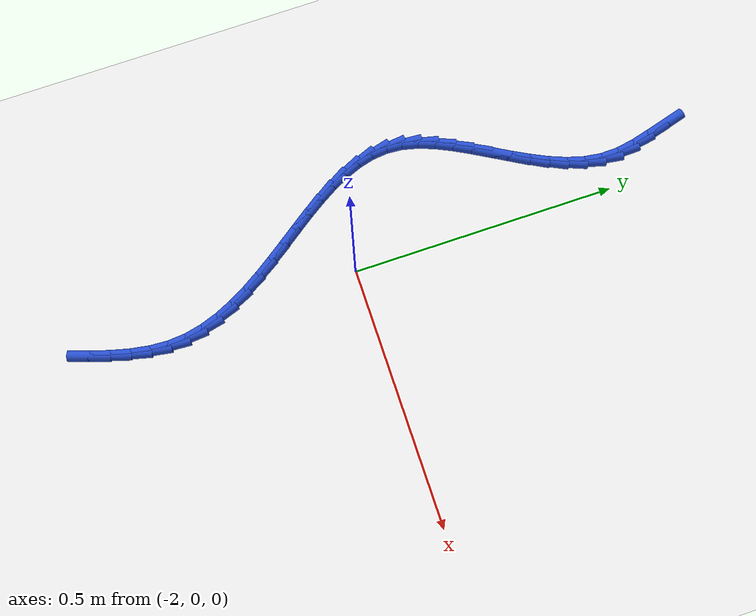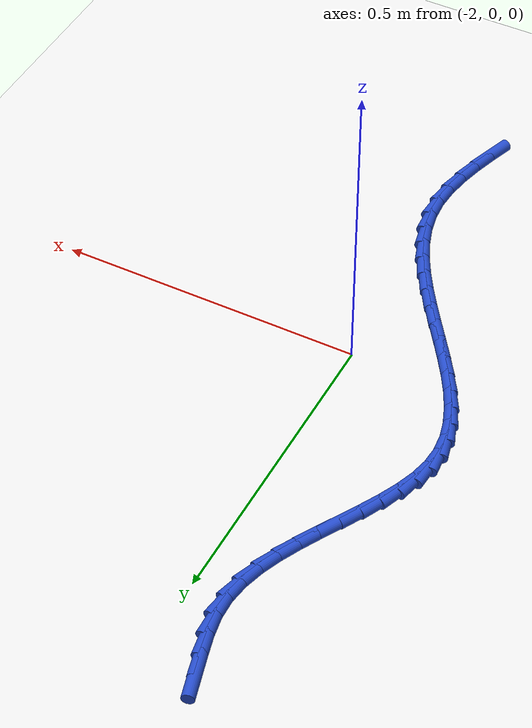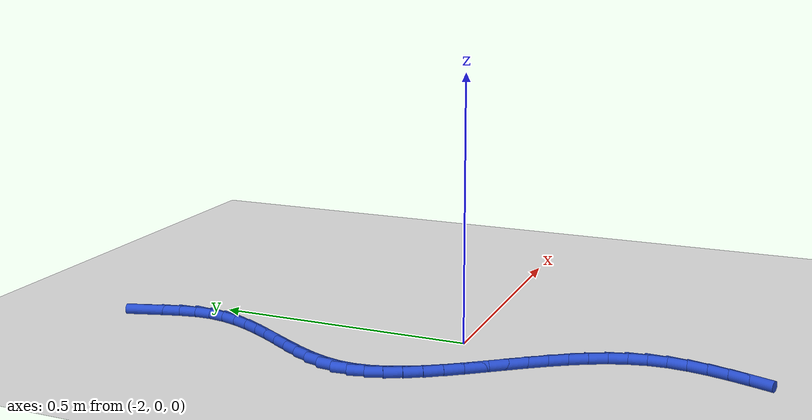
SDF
<sdf version="1.6">
 <world name="default">
  <model name="ground_plane">
   <static>1</static>
   <link name="link">
    <collision name="collision">
     <geometry><plane><normal>0 0 1</normal><size>100 100</size></plane></geometry>
     <surface><friction><ode><mu>100</mu><mu2>50</mu2></ode></friction></surface>
    </collision>
    <visual name="visual">
     <cast_shadows>0</cast_shadows>
     <geometry><plane><normal>0 0 1</normal><size>100 100</size></plane></geometry>
     <material>
      <script><uri>file://media/materials/scripts/gazebo.material</uri><name>Gazebo/WhiteGlow</name></script>
     </material>
    </visual>
   </link>
  </model>
  <model name="line">
   <link name="link_92">
    <pose>-2.0817299397385627 0.6386895275148157 0.01 0 1.57 -1.2992921558150217</pose>
    <collision name="collision">
     <geometry><cylinder><radius>0.01</radius><length>0.08</length></cylinder></geometry>
    </collision>
    <visual name="visual">
     <material>
      <script><name>Gazebo/Blue</name><uri>file://media/materials/scripts/gazebo.material</uri></script>
     </material>
     <geometry><cylinder><radius>0.01</radius><length>0.08</length></cylinder></geometry>
    </visual>
   </link>
   <link name="link_93">
    <pose>-2.0723799843383266 0.6051022869095473 0.01 0 1.57 -1.3177636886813704</pose>
    <collision name="collision">
     <geometry><cylinder><radius>0.01</radius><length>0.08</length></cylinder></geometry>
    </collision>
    <visual name="visual">
     <material>
      <script><name>Gazebo/Blue</name><uri>file://media/materials/scripts/gazebo.material</uri></script>
     </material>
     <geometry><cylinder><radius>0.01</radius><length>0.08</length></cylinder></geometry>
    </visual>
   </link>
   <link name="link_94">
    <pose>-2.0636592566674 0.5713761554376411 0.01 0 1.57 -1.3997617094479857</pose>
    <collision name="collision">
     <geometry><cylinder><radius>0.01</radius><length>0.08</length></cylinder></geometry>
    </collision>
    <visual name="visual">
     <material>
      <script><name>Gazebo/Blue</name><uri>file://media/materials/scripts/gazebo.material</uri></script>
     </material>
     <geometry><cylinder><radius>0.01</radius><length>0.08</length></cylinder></geometry>
    </visual>
   </link>
   <link name="link_95">
    <pose>-2.0578438086125046 0.5377067666140458 0.01 0 1.57 -1.5486019473364347</pose>
    <collision name="collision">
     <geometry><cylinder><radius>0.01</radius><length>0.08</length></cylinder></geometry>
    </collision>
    <visual name="visual">
     <material>
      <script><name>Gazebo/Blue</name><uri>file://media/materials/scripts/gazebo.material</uri></script>
     </material>
     <geometry><cylinder><radius>0.01</radius><length>0.08</length></cylinder></geometry>
    </visual>
   </link>
   <link name="link_96">
    <pose>-2.0571018682112534 0.5042830534447099 0.01 0 1.57 1.4273186416940131</pose>
    <collision name="collision">
     <geometry><cylinder><radius>0.01</radius><length>0.08</length></cylinder></geometry>
    </collision>
    <visual name="visual">
     <material>
      <script><name>Gazebo/Blue</name><uri>file://media/materials/scripts/gazebo.material</uri></script>
     </material>
     <geometry><cylinder><radius>0.01</radius><length>0.08</length></cylinder></geometry>
    </visual>
   </link>
   <link name="link_97">
    <pose>-2.061883244913855 0.4711871610652633 0.01 0 1.57 1.2921449384422197</pose>
    <collision name="collision">
     <geometry><cylinder><radius>0.01</radius><length>0.08</length></cylinder></geometry>
    </collision>
    <visual name="visual">
     <material>
      <script><name>Gazebo/Blue</name><uri>file://media/materials/scripts/gazebo.material</uri></script>
     </material>
     <geometry><cylinder><radius>0.01</radius><length>0.08</length></cylinder></geometry>
    </visual>
   </link>
   <link name="link_98">
    <pose>-2.071259029381335 0.4384155567419615 0.01 0 1.57 1.189728829844619</pose>
    <collision name="collision">
     <geometry><cylinder><radius>0.01</radius><length>0.08</length></cylinder></geometry>
    </collision>
    <visual name="visual">
     <material>
      <script><name>Gazebo/Blue</name><uri>file://media/materials/scripts/gazebo.material</uri></script>
     </material>
     <geometry><cylinder><radius>0.01</radius><length>0.08</length></cylinder></geometry>
    </visual>
   </link>
   <link name="link_99">
    <pose>-2.0842614632039114 0.40596229353909385 0.01 0 1.57 1.1173833883756448</pose>
    <collision name="collision">
     <geometry><cylinder><radius>0.01</radius><length>0.08</length></cylinder></geometry>
    </collision>
    <visual name="visual">
     <material>
      <script><name>Gazebo/Blue</name><uri>file://media/materials/scripts/gazebo.material</uri></script>
     </material>
     <geometry><cylinder><radius>0.01</radius><length>0.08</length></cylinder></geometry>
    </visual>
   </link>
   <link name="link_100">
    <pose>-2.0999227879718028 0.37382142452094735 0.01 0 1.57 1.0717346637980592</pose>
    <collision name="collision">
     <geometry><cylinder><radius>0.01</radius><length>0.08</length></cylinder></geometry>
    </collision>
    <visual name="visual">
     <material>
      <script><name>Gazebo/Blue</name><uri>file://media/materials/scripts/gazebo.material</uri></script>
     </material>
     <geometry><cylinder><radius>0.01</radius><length>0.08</length></cylinder></geometry>
    </visual>
   </link>
   <link name="link_101">
    <pose>-2.117275245275225 0.3419870027518112 0.01 0 1.57 1.0503018201952778</pose>
    <collision name="collision">
     <geometry><cylinder><radius>0.01</radius><length>0.08</length></cylinder></geometry>
    </collision>
    <visual name="visual">
     <material>
      <script><name>Gazebo/Blue</name><uri>file://media/materials/scripts/gazebo.material</uri></script>
     </material>
     <geometry><cylinder><radius>0.01</radius><length>0.08</length></cylinder></geometry>
    </visual>
   </link>
   <link name="link_102">
    <pose>-2.135351076704397 0.3104530812959727 0.01 0 1.57 1.0521238044113388</pose>
    <collision name="collision">
     <geometry><cylinder><radius>0.01</radius><length>0.08</length></cylinder></geometry>
    </collision>
    <visual name="visual">
     <material>
      <script><name>Gazebo/Blue</name><uri>file://media/materials/scripts/gazebo.material</uri></script>
     </material>
     <geometry><cylinder><radius>0.01</radius><length>0.08</length></cylinder></geometry>
    </visual>
   </link>
   <link name="link_103">
    <pose>-2.153182523849535 0.27921371321772087 0.01 0 1.57 1.0780201383303796</pose>
    <collision name="collision">
     <geometry><cylinder><radius>0.01</radius><length>0.08</length></cylinder></geometry>
    </collision>
    <visual name="visual">
     <material>
      <script><name>Gazebo/Blue</name><uri>file://media/materials/scripts/gazebo.material</uri></script>
     </material>
     <geometry><cylinder><radius>0.01</radius><length>0.08</length></cylinder></geometry>
    </visual>
   </link>
   <link name="link_104">
    <pose>-2.1698018283008587 0.24826295158134307 0.01 0 1.57 1.1307574098980127</pose>
    <collision name="collision">
     <geometry><cylinder><radius>0.01</radius><length>0.08</length></cylinder></geometry>
    </collision>
    <visual name="visual">
     <material>
      <script><name>Gazebo/Blue</name><uri>file://media/materials/scripts/gazebo.material</uri></script>
     </material>
     <geometry><cylinder><radius>0.01</radius><length>0.08</length></cylinder></geometry>
    </visual>
   </link>
   <link name="link_105">
    <pose>-2.1842412316485835 0.21759484945112825 0.01 0 1.57 1.2150588557051578</pose>
    <collision name="collision">
     <geometry><cylinder><radius>0.01</radius><length>0.08</length></cylinder></geometry>
    </collision>
    <visual name="visual">
     <material>
      <script><name>Gazebo/Blue</name><uri>file://media/materials/scripts/gazebo.material</uri></script>
     </material>
     <geometry><cylinder><radius>0.01</radius><length>0.08</length></cylinder></geometry>
    </visual>
   </link>
   <link name="link_106">
    <pose>-2.1955329754829283 0.18720345989136383 0.01 0 1.57 1.33690395036792</pose>
    <collision name="collision">
     <geometry><cylinder><radius>0.01</radius><length>0.08</length></cylinder></geometry>
    </collision>
    <visual name="visual">
     <material>
      <script><name>Gazebo/Blue</name><uri>file://media/materials/scripts/gazebo.material</uri></script>
     </material>
     <geometry><cylinder><radius>0.01</radius><length>0.08</length></cylinder></geometry>
    </visual>
   </link>
   <link name="link_107">
    <pose>-2.2027093013941106 0.15708283596633874 0.01 0 1.57 1.4996306879586054</pose>
    <collision name="collision">
     <geometry><cylinder><radius>0.01</radius><length>0.08</length></cylinder></geometry>
    </collision>
    <visual name="visual">
     <material>
      <script><name>Gazebo/Blue</name><uri>file://media/materials/scripts/gazebo.material</uri></script>
     </material>
     <geometry><cylinder><radius>0.01</radius><length>0.08</length></cylinder></geometry>
    </visual>
   </link>
   <link name="link_108">
    <pose>-2.20483770143251 0.12722565023418242 0.01 0 1.57 -1.4676700445481352</pose>
    <collision name="collision">
     <geometry><cylinder><radius>0.01</radius><length>0.08</length></cylinder></geometry>
    </collision>
    <visual name="visual">
     <material>
      <script><name>Gazebo/Blue</name><uri>file://media/materials/scripts/gazebo.material</uri></script>
     </material>
     <geometry><cylinder><radius>0.01</radius><length>0.08</length></cylinder></geometry>
    </visual>
   </link>
   <link name="link_109">
    <pose>-2.201771001683867 0.09759381938581346 0.01 0 1.57 -1.3172524718421506</pose>
    <collision name="collision">
     <geometry><cylinder><radius>0.01</radius><length>0.08</length></cylinder></geometry>
    </collision>
    <visual name="visual">
     <material>
      <script><name>Gazebo/Blue</name><uri>file://media/materials/scripts/gazebo.material</uri></script>
     </material>
     <geometry><cylinder><radius>0.01</radius><length>0.08</length></cylinder></geometry>
    </visual>
   </link>
   <link name="link_110">
    <pose>-2.1941334908738903 0.06811904748739894 0.01 0 1.57 -1.1962695192995012</pose>
    <collision name="collision">
     <geometry><cylinder><radius>0.01</radius><length>0.08</length></cylinder></geometry>
    </collision>
    <visual name="visual">
     <material>
      <script><name>Gazebo/Blue</name><uri>file://media/materials/scripts/gazebo.material</uri></script>
     </material>
     <geometry><cylinder><radius>0.01</radius><length>0.08</length></cylinder></geometry>
    </visual>
   </link>
   <link name="link_111">
    <pose>-2.1825819336331658 0.03873176675825847 0.01 0 1.57 -1.1037724015867634</pose>
    <collision name="collision">
     <geometry><cylinder><radius>0.01</radius><length>0.08</length></cylinder></geometry>
    </collision>
    <visual name="visual">
     <material>
      <script><name>Gazebo/Blue</name><uri>file://media/materials/scripts/gazebo.material</uri></script>
     </material>
     <geometry><cylinder><radius>0.01</radius><length>0.08</length></cylinder></geometry>
    </visual>
   </link>
   <link name="link_112">
    <pose>-2.167773094592282 0.009362409417710695 0.01 0 1.57 -1.0364782175728104</pose>
    <collision name="collision">
     <geometry><cylinder><radius>0.01</radius><length>0.08</length></cylinder></geometry>
    </collision>
    <visual name="visual">
     <material>
      <script><name>Gazebo/Blue</name><uri>file://media/materials/scripts/gazebo.material</uri></script>
     </material>
     <geometry><cylinder><radius>0.01</radius><length>0.08</length></cylinder></geometry>
    </visual>
   </link>
   <link name="link_113">
    <pose>-2.1503637383818255 -0.020058592314925537 0.01 0 1.57 -0.9908441151376155</pose>
    <collision name="collision">
     <geometry><cylinder><radius>0.01</radius><length>0.08</length></cylinder></geometry>
    </collision>
    <visual name="visual">
     <material>
      <script><name>Gazebo/Blue</name><uri>file://media/materials/scripts/gazebo.material</uri></script>
     </material>
     <geometry><cylinder><radius>0.01</radius><length>0.08</length></cylinder></geometry>
    </visual>
   </link>
   <link name="link_114">
    <pose>-2.131010629632385 -0.04960080622033193 0.01 0 1.57 -0.9639860256615724</pose>
    <collision name="collision">
     <geometry><cylinder><radius>0.01</radius><length>0.08</length></cylinder></geometry>
    </collision>
    <visual name="visual">
     <material>
      <script><name>Gazebo/Blue</name><uri>file://media/materials/scripts/gazebo.material</uri></script>
     </material>
     <geometry><cylinder><radius>0.01</radius><length>0.08</length></cylinder></geometry>
    </visual>
   </link>
   <link name="link_115">
    <pose>-2.1103705329745486 -0.07933380007918817 0.01 0 1.57 -0.9539437656592163</pose>
    <collision name="collision">
     <geometry><cylinder><radius>0.01</radius><length>0.08</length></cylinder></geometry>
    </collision>
    <visual name="visual">
     <material>
      <script><name>Gazebo/Blue</name><uri>file://media/materials/scripts/gazebo.material</uri></script>
     </material>
     <geometry><cylinder><radius>0.01</radius><length>0.08</length></cylinder></geometry>
    </visual>
   </link>
   <link name="link_116">
    <pose>-2.0891002130389036 -0.10932714167217603 0.01 0 1.57 -0.9596831728577317</pose>
    <collision name="collision">
     <geometry><cylinder><radius>0.01</radius><length>0.08</length></cylinder></geometry>
    </collision>
    <visual name="visual">
     <material>
      <script><name>Gazebo/Blue</name><uri>file://media/materials/scripts/gazebo.material</uri></script>
     </material>
     <geometry><cylinder><radius>0.01</radius><length>0.08</length></cylinder></geometry>
    </visual>
   </link>
   <link name="link_117">
    <pose>-2.067856434456038 -0.13965039877997656 0.01 0 1.57 -0.9810236113031803</pose>
    <collision name="collision">
     <geometry><cylinder><radius>0.01</radius><length>0.08</length></cylinder></geometry>
    </collision>
    <visual name="visual">
     <material>
      <script><name>Gazebo/Blue</name><uri>file://media/materials/scripts/gazebo.material</uri></script>
     </material>
     <geometry><cylinder><radius>0.01</radius><length>0.08</length></cylinder></geometry>
    </visual>
   </link>
   <link name="link_118">
    <pose>-2.0472959618565394 -0.17037313918327163 0.01 0 1.57 -1.0185496766957975</pose>
    <collision name="collision">
     <geometry><cylinder><radius>0.01</radius><length>0.08</length></cylinder></geometry>
    </collision>
    <visual name="visual">
     <material>
      <script><name>Gazebo/Blue</name><uri>file://media/materials/scripts/gazebo.material</uri></script>
     </material>
     <geometry><cylinder><radius>0.01</radius><length>0.08</length></cylinder></geometry>
    </visual>
   </link>
   <link name="link_119">
    <pose>-2.028075559870996 -0.2015649306627407 0.01 0 1.57 -1.073490444505903</pose>
    <collision name="collision">
     <geometry><cylinder><radius>0.01</radius><length>0.08</length></cylinder></geometry>
    </collision>
    <visual name="visual">
     <material>
      <script><name>Gazebo/Blue</name><uri>file://media/materials/scripts/gazebo.material</uri></script>
     </material>
     <geometry><cylinder><radius>0.01</radius><length>0.08</length></cylinder></geometry>
    </visual>
   </link>
   <link name="link_120">
    <pose>-2.0108519931299957 -0.23329534099906563 0.01 0 1.57 -1.1474899468940776</pose>
    <collision name="collision">
     <geometry><cylinder><radius>0.01</radius><length>0.08</length></cylinder></geometry>
    </collision>
    <visual name="visual">
     <material>
      <script><name>Gazebo/Blue</name><uri>file://media/materials/scripts/gazebo.material</uri></script>
     </material>
     <geometry><cylinder><radius>0.01</radius><length>0.08</length></cylinder></geometry>
    </visual>
   </link>
   <link name="link_121">
    <pose>-1.9962820262641254 -0.26563393797292756 0.01 0 1.57 -1.242133862034232</pose>
    <collision name="collision">
     <geometry><cylinder><radius>0.01</radius><length>0.08</length></cylinder></geometry>
    </collision>
    <visual name="visual">
     <material>
      <script><name>Gazebo/Blue</name><uri>file://media/materials/scripts/gazebo.material</uri></script>
     </material>
     <geometry><cylinder><radius>0.01</radius><length>0.08</length></cylinder></geometry>
    </visual>
   </link>
   <link name="link_122">
    <pose>-1.9850224239039735 -0.29865028936500826 0.01 0 1.57 -1.3580781365805008</pose>
    <collision name="collision">
     <geometry><cylinder><radius>0.01</radius><length>0.08</length></cylinder></geometry>
    </collision>
    <visual name="visual">
     <material>
      <script><name>Gazebo/Blue</name><uri>file://media/materials/scripts/gazebo.material</uri></script>
     </material>
     <geometry><cylinder><radius>0.01</radius><length>0.08</length></cylinder></geometry>
    </visual>
   </link>
   <link name="link_123">
    <pose>-1.977729950680128 -0.33241396295598724 0.01 0 1.57 -1.4936648633138763</pose>
    <collision name="collision">
     <geometry><cylinder><radius>0.01</radius><length>0.08</length></cylinder></geometry>
    </collision>
    <visual name="visual">
     <material>
      <script><name>Gazebo/Blue</name><uri>file://media/materials/scripts/gazebo.material</uri></script>
     </material>
     <geometry><cylinder><radius>0.01</radius><length>0.08</length></cylinder></geometry>
    </visual>
   </link>
   <link name="link_124">
    <pose>-1.9750574603203226 -0.36699373564389653 0.01 0 1.57 1.5114983112696694</pose>
    <collision name="collision">
     <geometry><cylinder><radius>0.01</radius><length>0.08</length></cylinder></geometry>
    </collision>
    <visual name="visual">
     <material>
      <script><name>Gazebo/Blue</name><uri>file://media/materials/scripts/gazebo.material</uri></script>
     </material>
     <geometry><cylinder><radius>0.01</radius><length>0.08</length></cylinder></geometry>
    </visual>
   </link>
   <link name="link_125">
    <pose>-1.9771568982398966 -0.4023570881022692 0.01 0 1.57 1.404308357052385</pose>
    <collision name="collision">
     <geometry><cylinder><radius>0.01</radius><length>0.08</length></cylinder></geometry>
    </collision>
    <visual name="visual">
     <material>
      <script><name>Gazebo/Blue</name><uri>file://media/materials/scripts/gazebo.material</uri></script>
     </material>
     <geometry><cylinder><radius>0.01</radius><length>0.08</length></cylinder></geometry>
    </visual>
   </link>
   <link name="link_126">
    <pose>-1.9831921113290971 -0.4382716826994783 0.01 0 1.57 1.3266853729686083</pose>
    <collision name="collision">
     <geometry><cylinder><radius>0.01</radius><length>0.08</length></cylinder></geometry>
    </collision>
    <visual name="visual">
     <material>
      <script><name>Gazebo/Blue</name><uri>file://media/materials/scripts/gazebo.material</uri></script>
     </material>
     <geometry><cylinder><radius>0.01</radius><length>0.08</length></cylinder></geometry>
    </visual>
   </link>
   <link name="link_127">
    <pose>-1.9922112611326033 -0.47448178732541196 0.01 0 1.57 1.2748840542999573</pose>
    <collision name="collision">
     <geometry><cylinder><radius>0.01</radius><length>0.08</length></cylinder></geometry>
    </collision>
    <visual name="visual">
     <material>
      <script><name>Gazebo/Blue</name><uri>file://media/materials/scripts/gazebo.material</uri></script>
     </material>
     <geometry><cylinder><radius>0.01</radius><length>0.08</length></cylinder></geometry>
    </visual>
   </link>
   <link name="link_128">
    <pose>-2.0032625091950926 -0.5107316698699611 0.01 0 1.57 1.24604665164331</pose>
    <collision name="collision">
     <geometry><cylinder><radius>0.01</radius><length>0.08</length></cylinder></geometry>
    </collision>
    <visual name="visual">
     <material>
      <script><name>Gazebo/Blue</name><uri>file://media/materials/scripts/gazebo.material</uri></script>
     </material>
     <geometry><cylinder><radius>0.01</radius><length>0.08</length></cylinder></geometry>
    </visual>
   </link>
  </model>
 </world>
</sdf>
